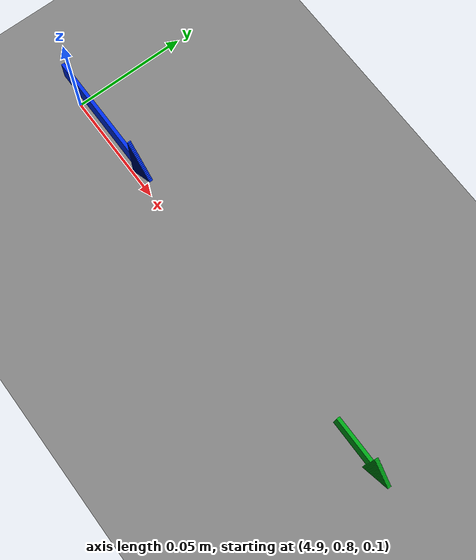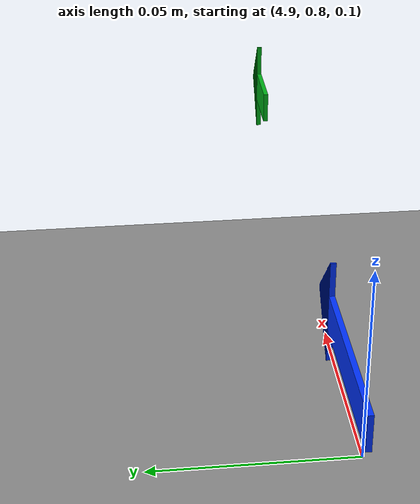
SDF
<sdf version="1.9">
 <world name="ros2_world">
  <model name="ground_plane">
   <static>true</static>
   <link name="link">
    <collision name="collision">
     <geometry><plane><normal>0 0 1</normal><size>30 30</size></plane></geometry>
    </collision>
    <visual name="visual">
     <geometry><plane><normal>0 0 1</normal><size>30 30</size></plane></geometry>
     <material><ambient>0.55 0.55 0.55 1</ambient><diffuse>0.55 0.55 0.55 1</diffuse></material>
    </visual>
   </link>
  </model>
  <model name="flechas">
   <static>true</static>
   <link name="flecha_22">
    <pose>4.92 0.80125 0.115 0 0 0</pose>
    <visual name="p0">
     <pose>-0.0065 0 0 0 0 0</pose>
     <geometry><box><size>0.047 0.0015 0.01</size></box></geometry>
     <material><ambient>0 0.2 1 1</ambient><diffuse>0 0.2 1 1</diffuse></material>
    </visual>
    <visual name="p1">
     <pose>0.01726 0 0 0 0 0</pose>
     <geometry><box><size>0.00052 0.0015 0.029</size></box></geometry>
     <material><ambient>0 0.2 1 1</ambient><diffuse>0 0.2 1 1</diffuse></material>
    </visual>
    <visual name="p2">
     <pose>0.01778 0 0 0 0 0</pose>
     <geometry><box><size>0.00052 0.0015 0.02784</size></box></geometry>
     <material><ambient>0 0.2 1 1</ambient><diffuse>0 0.2 1 1</diffuse></material>
    </visual>
    <visual name="p3">
     <pose>0.0183 0 0 0 0 0</pose>
     <geometry><box><size>0.00052 0.0015 0.02668</size></box></geometry>
     <material><ambient>0 0.2 1 1</ambient><diffuse>0 0.2 1 1</diffuse></material>
    </visual>
    <visual name="p4">
     <pose>0.01882 0 0 0 0 0</pose>
     <geometry><box><size>0.00052 0.0015 0.02552</size></box></geometry>
     <material><ambient>0 0.2 1 1</ambient><diffuse>0 0.2 1 1</diffuse></material>
    </visual>
    <visual name="p5">
     <pose>0.01934 0 0 0 0 0</pose>
     <geometry><box><size>0.00052 0.0015 0.02436</size></box></geometry>
     <material><ambient>0 0.2 1 1</ambient><diffuse>0 0.2 1 1</diffuse></material>
    </visual>
    <visual name="p6">
     <pose>0.01986 0 0 0 0 0</pose>
     <geometry><box><size>0.00052 0.0015 0.0232</size></box></geometry>
     <material><ambient>0 0.2 1 1</ambient><diffuse>0 0.2 1 1</diffuse></material>
    </visual>
    <visual name="p7">
     <pose>0.02038 0 0 0 0 0</pose>
     <geometry><box><size>0.00052 0.0015 0.02204</size></box></geometry>
     <material><ambient>0 0.2 1 1</ambient><diffuse>0 0.2 1 1</diffuse></material>
    </visual>
    <visual name="p8">
     <pose>0.0209 0 0 0 0 0</pose>
     <geometry><box><size>0.00052 0.0015 0.02088</size></box></geometry>
     <material><ambient>0 0.2 1 1</ambient><diffuse>0 0.2 1 1</diffuse></material>
    </visual>
    <visual name="p9">
     <pose>0.02142 0 0 0 0 0</pose>
     <geometry><box><size>0.00052 0.0015 0.01972</size></box></geometry>
     <material><ambient>0 0.2 1 1</ambient><diffuse>0 0.2 1 1</diffuse></material>
    </visual>
    <visual name="p10">
     <pose>0.02194 0 0 0 0 0</pose>
     <geometry><box><size>0.00052 0.0015 0.01856</size></box></geometry>
     <material><ambient>0 0.2 1 1</ambient><diffuse>0 0.2 1 1</diffuse></material>
    </visual>
    <visual name="p11">
     <pose>0.02246 0 0 0 0 0</pose>
     <geometry><box><size>0.00052 0.0015 0.0174</size></box></geometry>
     <material><ambient>0 0.2 1 1</ambient><diffuse>0 0.2 1 1</diffuse></material>
    </visual>
    <visual name="p12">
     <pose>0.02298 0 0 0 0 0</pose>
     <geometry><box><size>0.00052 0.0015 0.01624</size></box></geometry>
     <material><ambient>0 0.2 1 1</ambient><diffuse>0 0.2 1 1</diffuse></material>
    </visual>
    <visual name="p13">
     <pose>0.0235 0 0 0 0 0</pose>
     <geometry><box><size>0.00052 0.0015 0.01508</size></box></geometry>
     <material><ambient>0 0.2 1 1</ambient><diffuse>0 0.2 1 1</diffuse></material>
    </visual>
    <visual name="p14">
     <pose>0.02402 0 0 0 0 0</pose>
     <geometry><box><size>0.00052 0.0015 0.01392</size></box></geometry>
     <material><ambient>0 0.2 1 1</ambient><diffuse>0 0.2 1 1</diffuse></material>
    </visual>
    <visual name="p15">
     <pose>0.02454 0 0 0 0 0</pose>
     <geometry><box><size>0.00052 0.0015 0.01276</size></box></geometry>
     <material><ambient>0 0.2 1 1</ambient><diffuse>0 0.2 1 1</diffuse></material>
    </visual>
    <visual name="p16">
     <pose>0.02506 0 0 0 0 0</pose>
     <geometry><box><size>0.00052 0.0015 0.0116</size></box></geometry>
     <material><ambient>0 0.2 1 1</ambient><diffuse>0 0.2 1 1</diffuse></material>
    </visual>
    <visual name="p17">
     <pose>0.02558 0 0 0 0 0</pose>
     <geometry><box><size>0.00052 0.0015 0.01044</size></box></geometry>
     <material><ambient>0 0.2 1 1</ambient><diffuse>0 0.2 1 1</diffuse></material>
    </visual>
    <visual name="p18">
     <pose>0.0261 0 0 0 0 0</pose>
     <geometry><box><size>0.00052 0.0015 0.00928</size></box></geometry>
     <material><ambient>0 0.2 1 1</ambient><diffuse>0 0.2 1 1</diffuse></material>
    </visual>
    <visual name="p19">
     <pose>0.02662 0 0 0 0 0</pose>
     <geometry><box><size>0.00052 0.0015 0.00812</size></box></geometry>
     <material><ambient>0 0.2 1 1</ambient><diffuse>0 0.2 1 1</diffuse></material>
    </visual>
    <visual name="p20">
     <pose>0.02714 0 0 0 0 0</pose>
     <geometry><box><size>0.00052 0.0015 0.00696</size></box></geometry>
     <material><ambient>0 0.2 1 1</ambient><diffuse>0 0.2 1 1</diffuse></material>
    </visual>
    <visual name="p21">
     <pose>0.02766 0 0 0 0 0</pose>
     <geometry><box><size>0.00052 0.0015 0.0058</size></box></geometry>
     <material><ambient>0 0.2 1 1</ambient><diffuse>0 0.2 1 1</diffuse></material>
    </visual>
    <visual name="p22">
     <pose>0.02818 0 0 0 0 0</pose>
     <geometry><box><size>0.00052 0.0015 0.00464</size></box></geometry>
     <material><ambient>0 0.2 1 1</ambient><diffuse>0 0.2 1 1</diffuse></material>
    </visual>
    <visual name="p23">
     <pose>0.0287 0 0 0 0 0</pose>
     <geometry><box><size>0.00052 0.0015 0.00348</size></box></geometry>
     <material><ambient>0 0.2 1 1</ambient><diffuse>0 0.2 1 1</diffuse></material>
    </visual>
    <visual name="p24">
     <pose>0.02922 0 0 0 0 0</pose>
     <geometry><box><size>0.00052 0.0015 0.00232</size></box></geometry>
     <material><ambient>0 0.2 1 1</ambient><diffuse>0 0.2 1 1</diffuse></material>
    </visual>
    <visual name="p25">
     <pose>0.02974 0 0 0 0 0</pose>
     <geometry><box><size>0.00052 0.0015 0.00116</size></box></geometry>
     <material><ambient>0 0.2 1 1</ambient><diffuse>0 0.2 1 1</diffuse></material>
    </visual>
   </link>
   <link name="flecha_23">
    <pose>5.08 0.80125 0.115 0 0 0</pose>
    <visual name="p0">
     <pose>-0.0055 0 0 0 0 0</pose>
     <geometry><box><size>0.019 0.0015 0.01</size></box></geometry>
     <material><ambient>0 0.7 0.1 1</ambient><diffuse>0 0.7 0.1 1</diffuse></material>
    </visual>
    <visual name="p1">
     <pose>0.00422 0 0 0 0 0</pose>
     <geometry><box><size>0.00044 0.0015 0.03</size></box></geometry>
     <material><ambient>0 0.7 0.1 1</ambient><diffuse>0 0.7 0.1 1</diffuse></material>
    </visual>
    <visual name="p2">
     <pose>0.00466 0 0 0 0 0</pose>
     <geometry><box><size>0.00044 0.0015 0.0288</size></box></geometry>
     <material><ambient>0 0.7 0.1 1</ambient><diffuse>0 0.7 0.1 1</diffuse></material>
    </visual>
    <visual name="p3">
     <pose>0.0051 0 0 0 0 0</pose>
     <geometry><box><size>0.00044 0.0015 0.0276</size></box></geometry>
     <material><ambient>0 0.7 0.1 1</ambient><diffuse>0 0.7 0.1 1</diffuse></material>
    </visual>
    <visual name="p4">
     <pose>0.00554 0 0 0 0 0</pose>
     <geometry><box><size>0.00044 0.0015 0.0264</size></box></geometry>
     <material><ambient>0 0.7 0.1 1</ambient><diffuse>0 0.7 0.1 1</diffuse></material>
    </visual>
    <visual name="p5">
     <pose>0.00598 0 0 0 0 0</pose>
     <geometry><box><size>0.00044 0.0015 0.0252</size></box></geometry>
     <material><ambient>0 0.7 0.1 1</ambient><diffuse>0 0.7 0.1 1</diffuse></material>
    </visual>
    <visual name="p6">
     <pose>0.00642 0 0 0 0 0</pose>
     <geometry><box><size>0.00044 0.0015 0.024</size></box></geometry>
     <material><ambient>0 0.7 0.1 1</ambient><diffuse>0 0.7 0.1 1</diffuse></material>
    </visual>
    <visual name="p7">
     <pose>0.00686 0 0 0 0 0</pose>
     <geometry><box><size>0.00044 0.0015 0.0228</size></box></geometry>
     <material><ambient>0 0.7 0.1 1</ambient><diffuse>0 0.7 0.1 1</diffuse></material>
    </visual>
    <visual name="p8">
     <pose>0.0073 0 0 0 0 0</pose>
     <geometry><box><size>0.00044 0.0015 0.0216</size></box></geometry>
     <material><ambient>0 0.7 0.1 1</ambient><diffuse>0 0.7 0.1 1</diffuse></material>
    </visual>
    <visual name="p9">
     <pose>0.00774 0 0 0 0 0</pose>
     <geometry><box><size>0.00044 0.0015 0.0204</size></box></geometry>
     <material><ambient>0 0.7 0.1 1</ambient><diffuse>0 0.7 0.1 1</diffuse></material>
    </visual>
    <visual name="p10">
     <pose>0.00818 0 0 0 0 0</pose>
     <geometry><box><size>0.00044 0.0015 0.0192</size></box></geometry>
     <material><ambient>0 0.7 0.1 1</ambient><diffuse>0 0.7 0.1 1</diffuse></material>
    </visual>
    <visual name="p11">
     <pose>0.00862 0 0 0 0 0</pose>
     <geometry><box><size>0.00044 0.0015 0.018</size></box></geometry>
     <material><ambient>0 0.7 0.1 1</ambient><diffuse>0 0.7 0.1 1</diffuse></material>
    </visual>
    <visual name="p12">
     <pose>0.00906 0 0 0 0 0</pose>
     <geometry><box><size>0.00044 0.0015 0.0168</size></box></geometry>
     <material><ambient>0 0.7 0.1 1</ambient><diffuse>0 0.7 0.1 1</diffuse></material>
    </visual>
    <visual name="p13">
     <pose>0.0095 0 0 0 0 0</pose>
     <geometry><box><size>0.00044 0.0015 0.0156</size></box></geometry>
     <material><ambient>0 0.7 0.1 1</ambient><diffuse>0 0.7 0.1 1</diffuse></material>
    </visual>
    <visual name="p14">
     <pose>0.00994 0 0 0 0 0</pose>
     <geometry><box><size>0.00044 0.0015 0.0144</size></box></geometry>
     <material><ambient>0 0.7 0.1 1</ambient><diffuse>0 0.7 0.1 1</diffuse></material>
    </visual>
    <visual name="p15">
     <pose>0.01038 0 0 0 0 0</pose>
     <geometry><box><size>0.00044 0.0015 0.0132</size></box></geometry>
     <material><ambient>0 0.7 0.1 1</ambient><diffuse>0 0.7 0.1 1</diffuse></material>
    </visual>
    <visual name="p16">
     <pose>0.01082 0 0 0 0 0</pose>
     <geometry><box><size>0.00044 0.0015 0.012</size></box></geometry>
     <material><ambient>0 0.7 0.1 1</ambient><diffuse>0 0.7 0.1 1</diffuse></material>
    </visual>
    <visual name="p17">
     <pose>0.01126 0 0 0 0 0</pose>
     <geometry><box><size>0.00044 0.0015 0.0108</size></box></geometry>
     <material><ambient>0 0.7 0.1 1</ambient><diffuse>0 0.7 0.1 1</diffuse></material>
    </visual>
    <visual name="p18">
     <pose>0.0117 0 0 0 0 0</pose>
     <geometry><box><size>0.00044 0.0015 0.0096</size></box></geometry>
     <material><ambient>0 0.7 0.1 1</ambient><diffuse>0 0.7 0.1 1</diffuse></material>
    </visual>
    <visual name="p19">
     <pose>0.01214 0 0 0 0 0</pose>
     <geometry><box><size>0.00044 0.0015 0.0084</size></box></geometry>
     <material><ambient>0 0.7 0.1 1</ambient><diffuse>0 0.7 0.1 1</diffuse></material>
    </visual>
    <visual name="p20">
     <pose>0.01258 0 0 0 0 0</pose>
     <geometry><box><size>0.00044 0.0015 0.0072</size></box></geometry>
     <material><ambient>0 0.7 0.1 1</ambient><diffuse>0 0.7 0.1 1</diffuse></material>
    </visual>
    <visual name="p21">
     <pose>0.01302 0 0 0 0 0</pose>
     <geometry><box><size>0.00044 0.0015 0.006</size></box></geometry>
     <material><ambient>0 0.7 0.1 1</ambient><diffuse>0 0.7 0.1 1</diffuse></material>
    </visual>
    <visual name="p22">
     <pose>0.01346 0 0 0 0 0</pose>
     <geometry><box><size>0.00044 0.0015 0.0048</size></box></geometry>
     <material><ambient>0 0.7 0.1 1</ambient><diffuse>0 0.7 0.1 1</diffuse></material>
    </visual>
    <visual name="p23">
     <pose>0.0139 0 0 0 0 0</pose>
     <geometry><box><size>0.00044 0.0015 0.0036</size></box></geometry>
     <material><ambient>0 0.7 0.1 1</ambient><diffuse>0 0.7 0.1 1</diffuse></material>
    </visual>
    <visual name="p24">
     <pose>0.01434 0 0 0 0 0</pose>
     <geometry><box><size>0.00044 0.0015 0.0024</size></box></geometry>
     <material><ambient>0 0.7 0.1 1</ambient><diffuse>0 0.7 0.1 1</diffuse></material>
    </visual>
    <visual name="p25">
     <pose>0.01478 0 0 0 0 0</pose>
     <geometry><box><size>0.00044 0.0015 0.0012</size></box></geometry>
     <material><ambient>0 0.7 0.1 1</ambient><diffuse>0 0.7 0.1 1</diffuse></material>
    </visual>
   </link>
  </model>
 </world>
</sdf>
